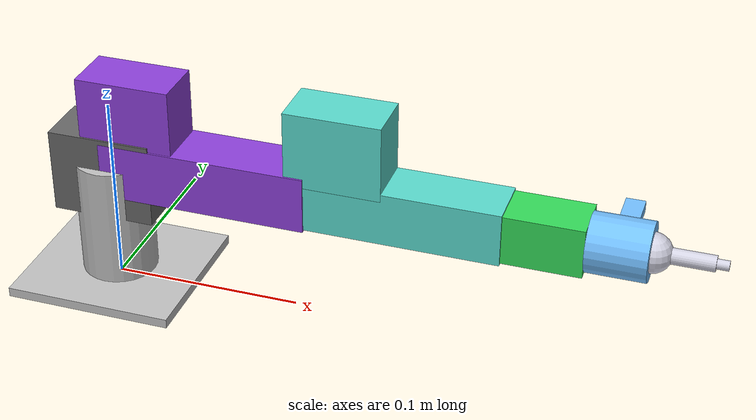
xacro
<?xml version="1.0"?>
<robot xmlns:xacro="http://www.ros.org/wiki/xacro" name="gem_cutter_arm">
    <xacro:arg name="initial_positions_file" default="initial_positions.yaml" />

    <!-- Import gem_cutter_arm urdf file -->
    <xacro:include filename="$(find gem_cutter_description)/urdf/gem_cutter_arm.urdf.xacro" />

    <!-- Import control_xacro -->
    <xacro:include filename="gem_cutter_arm.ros2_control.xacro" />

    <xacro:gem_cutter_arm_ros2_control name="FakeSystem" initial_positions_file="$(arg initial_positions_file)"/>

</robot>

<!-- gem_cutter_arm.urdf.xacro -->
<robot name="gem_cutter_arm" xmlns:xacro="http://www.ros.org/wiki/xacro">
    <!-- Optional prefix support (useful if you spawn multiple arms) -->
    <xacro:arg name="prefix" default=""/>
    <!-- Materials -->
    <xacro:include filename="$(find gem_cutter_description)/urdf/materials.xacro"/>
    <!-- Base plate: 9cm x 8.4cm -->
    <link name="$(arg prefix)base_link">
        <inertial>
            <origin xyz="0 0 0.0025" rpy="0 0 0"/>
            <mass value="0.35"/>
            <inertia ixx="0.0005" ixy="0" ixz="0" iyy="0.0005" iyz="0" izz="0.0008"/>
        </inertial>
        <visual>
            <origin xyz="0 0 0.0025" rpy="0 0 0"/>
            <geometry>
                <box size="0.09 0.084 0.005"/>
            </geometry>
            <material name="gray"/>
        </visual>
        <collision>
            <origin xyz="0 0 0.0025" rpy="0 0 0"/>
            <geometry>
                <box size="0.09 0.084 0.005"/>
            </geometry>
        </collision>
    </link>
    <!-- J1: base yaw -->
    <joint name="$(arg prefix)joint1_base_yaw" type="revolute">
        <parent link="$(arg prefix)base_link"/>
        <child link="$(arg prefix)link1_pedestal"/>
        <origin xyz="0 0 0.005" rpy="0 0 0"/>
        <axis xyz="0 0 1"/>
        <limit lower="-3.14159" upper="3.14159" effort="2.0" velocity="2.0"/>
        <dynamics damping="0.2" friction="0.1"/>
    </joint>
    <link name="$(arg prefix)link1_pedestal">
        <inertial>
            <origin xyz="0 0 0.0325" rpy="0 0 0"/>
            <mass value="0.25"/>
            <inertia ixx="0.00025" ixy="0" ixz="0" iyy="0.00025" iyz="0" izz="0.00020"/>
        </inertial>
        <visual>
            <origin xyz="0 0 0.0325" rpy="0 0 0"/>
            <geometry>
                <cylinder radius="0.02" length="0.065"/>
            </geometry>
            <material name="gray"/>
        </visual>
        <collision>
            <origin xyz="0 0 0.0325" rpy="0 0 0"/>
            <geometry>
                <cylinder radius="0.02" length="0.065"/>
            </geometry>
        </collision>
        <!-- Shoulder servo block -->
        <visual>
            <origin xyz="0 0 0.060" rpy="0 0 0"/>
            <geometry>
                <box size="0.055 0.030 0.045"/>
            </geometry>
            <material name="base_black"/>
        </visual>
        <collision>
            <origin xyz="0 0 0.060" rpy="0 0 0"/>
            <geometry>
                <box size="0.055 0.030 0.045"/>
            </geometry>
        </collision>
    </link>
    <!-- J2: shoulder pitch -->
    <joint name="$(arg prefix)joint2_shoulder_pitch" type="revolute">
        <parent link="$(arg prefix)link1_pedestal"/>
        <child link="$(arg prefix)link2_upper_arm"/>
        <origin xyz="0 0 0.065" rpy="0 0 0"/>
        <axis xyz="0 1 0"/>
        <limit lower="-1.25" upper="1.35" effort="2.0" velocity="2.0"/>
        <dynamics damping="0.25" friction="0.10"/>
    </joint>
    <link name="$(arg prefix)link2_upper_arm">
        <inertial>
            <origin xyz="0.055 0 0" rpy="0 0 0"/>
            <mass value="0.22"/>
            <inertia ixx="0.00018" ixy="0" ixz="0" iyy="0.00045" iyz="0" izz="0.00045"/>
        </inertial>
        <visual>
            <origin xyz="0.055 0 0" rpy="0 0 0"/>
            <geometry>
                <box size="0.11 0.030 0.030"/>
            </geometry>
            <material name="purple"/>
        </visual>
        <collision>
            <origin xyz="0.055 0 0" rpy="0 0 0"/>
            <geometry>
                <box size="0.11 0.030 0.030"/>
            </geometry>
        </collision>
        <visual>
            <origin xyz="0.015 0 0.030" rpy="0 0 0"/>
            <geometry>
                <box size="0.050 0.028 0.040"/>
            </geometry>
            <material name="purple"/>
        </visual>
        <collision>
            <origin xyz="0.015 0 0.030" rpy="0 0 0"/>
            <geometry>
                <box size="0.050 0.028 0.040"/>
            </geometry>
        </collision>
    </link>
    <!-- J3: elbow pitch -->
    <joint name="$(arg prefix)joint3_elbow_pitch" type="revolute">
        <parent link="$(arg prefix)link2_upper_arm"/>
        <child link="$(arg prefix)link3_forearm"/>
        <origin xyz="0.11 0 0" rpy="0 0 0"/>
        <axis xyz="0 1 0"/>
        <limit lower="-2.10" upper="2.10" effort="2.0" velocity="2.0"/>
        <dynamics damping="0.20" friction="0.08"/>
    </joint>
    <link name="$(arg prefix)link3_forearm">
        <inertial>
            <origin xyz="0.05 0 0" rpy="0 0 0"/>
            <mass value="0.18"/>
            <inertia ixx="0.00012" ixy="0" ixz="0" iyy="0.00028" iyz="0" izz="0.00028"/>
        </inertial>
        <visual>
            <origin xyz="0.05 0 0" rpy="0 0 0"/>
            <geometry>
                <box size="0.10 0.028 0.028"/>
            </geometry>
            <material name="light_blueish_green"/>
        </visual>
        <collision>
            <origin xyz="0.05 0 0" rpy="0 0 0"/>
            <geometry>
                <box size="0.10 0.028 0.028"/>
            </geometry>
        </collision>
        <visual>
            <origin xyz="0.015 0 0.030" rpy="0 0 0"/>
            <geometry>
                <box size="0.050 0.028 0.040"/>
            </geometry>
            <material name="light_blueish_green"/>
        </visual>
        <collision>
            <origin xyz="0.015 0 0.030" rpy="0 0 0"/>
            <geometry>
                <box size="0.050 0.028 0.040"/>
            </geometry>
        </collision>
    </link>
    <!-- J4: wrist pitch -->
    <joint name="$(arg prefix)joint4_wrist_pitch" type="revolute">
        <parent link="$(arg prefix)link3_forearm"/>
        <child link="$(arg prefix)link4_wrist_pitch_link"/>
        <origin xyz="0.10 0 0" rpy="0 0 0"/>
        <axis xyz="0 1 0"/>
        <limit lower="-1.70" upper="1.70" effort="1.5" velocity="2.5"/>
        <dynamics damping="0.15" friction="0.06"/>
    </joint>
    <link name="$(arg prefix)link4_wrist_pitch_link">
        <inertial>
            <origin xyz="0.02 0 0" rpy="0 0 0"/>
            <mass value="0.10"/>
            <inertia ixx="0.00004" ixy="0" ixz="0" iyy="0.00006" iyz="0" izz="0.00006"/>
        </inertial>
        <visual>
            <origin xyz="0.02 0 0" rpy="0 0 0"/>
            <geometry>
                <box size="0.04 0.026 0.026"/>
            </geometry>
            <material name="green"/>
        </visual>
        <collision>
            <origin xyz="0.02 0 0" rpy="0 0 0"/>
            <geometry>
                <box size="0.04 0.026 0.026"/>
            </geometry>
        </collision>
    </link>
    <!-- J5: wrist roll -->
    <joint name="$(arg prefix)joint5_wrist_roll" type="revolute">
        <parent link="$(arg prefix)link4_wrist_pitch_link"/>
        <child link="$(arg prefix)link5_roll_body"/>
        <origin xyz="0.04 0 0" rpy="0 0 0"/>
        <axis xyz="1 0 0"/>
        <limit lower="-3.14159" upper="3.14159" effort="1.0" velocity="4.0"/>
        <dynamics damping="0.10" friction="0.05"/>
    </joint>
    <link name="$(arg prefix)link5_roll_body">
        <inertial>
            <origin xyz="0.015 0 0" rpy="0 0 0"/>
            <mass value="0.09"/>
            <inertia ixx="0.00002" ixy="0" ixz="0" iyy="0.00002" iyz="0" izz="0.000015"/>
        </inertial>
        <visual>
            <origin xyz="0.015 0 0" rpy="0 1.5708 0"/>
            <geometry>
                <cylinder radius="0.015" length="0.03"/>
            </geometry>
            <material name="light_blue"/>
        </visual>
        <collision>
            <origin xyz="0.015 0 0" rpy="0 1.5708 0"/>
            <geometry>
                <cylinder radius="0.015" length="0.03"/>
            </geometry>
        </collision>
        <!-- Offset fin -->
        <visual>
            <origin xyz="0.015 0.020 0" rpy="0 0 0"/>
            <geometry>
                <box size="0.010 0.040 0.006"/>
            </geometry>
            <material name="light_blue"/>
        </visual>
        <collision>
            <origin xyz="0.015 0.020 0" rpy="0 0 0"/>
            <geometry>
                <box size="0.010 0.040 0.006"/>
            </geometry>
        </collision>
    </link>
    <!-- J6: tool yaw -->
    <joint name="$(arg prefix)joint6_tool_yaw" type="revolute">
        <parent link="$(arg prefix)link5_roll_body"/>
        <child link="$(arg prefix)tool_mount"/>
        <origin xyz="0.03 0 0" rpy="0 0 0"/>
        <axis xyz="0 0 1"/>
        <limit lower="-3.14159" upper="3.14159" effort="0.8" velocity="4.0"/>
        <dynamics damping="0.10" friction="0.05"/>
    </joint>
    <link name="$(arg prefix)tool_mount">
        <inertial>
            <origin xyz="0 0 0" rpy="0 0 0"/>
            <mass value="0.03"/>
            <inertia ixx="0.000005" ixy="0" ixz="0" iyy="0.000005" iyz="0" izz="0.000005"/>
        </inertial>
        <visual>
            <origin xyz="0 0 0" rpy="0 0 0"/>
            <geometry>
                <sphere radius="0.01"/>
            </geometry>
            <material name="tool_silver"/>
        </visual>
        <collision>
            <origin xyz="0 0 0" rpy="0 0 0"/>
            <geometry>
                <sphere radius="0.01"/>
            </geometry>
        </collision>
    </link>
    <!-- Fixed tool -->
    <joint name="$(arg prefix)ee_fixed" type="fixed">
        <parent link="$(arg prefix)tool_mount"/>
        <child link="$(arg prefix)ee_tool"/>
        <origin xyz="0 0 0" rpy="0 0 0"/>
    </joint>
    <link name="$(arg prefix)ee_tool">
        <inertial>
            <origin xyz="0.0165 0 0" rpy="0 0 0"/>
            <mass value="0.05"/>
            <inertia ixx="0.00001" ixy="0" ixz="0" iyy="0.00002" iyz="0" izz="0.00002"/>
        </inertial>
        <visual>
            <origin xyz="0.015 0 0" rpy="0 1.5708 0"/>
            <geometry>
                <cylinder radius="0.004" length="0.03"/>
            </geometry>
            <material name="tool_silver"/>
        </visual>
        <collision>
            <origin xyz="0.015 0 0" rpy="0 1.5708 0"/>
            <geometry>
                <cylinder radius="0.004" length="0.03"/>
            </geometry>
        </collision>
        <visual>
            <origin xyz="0.033 0 0" rpy="0 1.5708 0"/>
            <geometry>
                <cylinder radius="0.0025" length="0.006"/>
            </geometry>
            <material name="tool_silver"/>
        </visual>
        <collision>
            <origin xyz="0.033 0 0" rpy="0 1.5708 0"/>
            <geometry>
                <cylinder radius="0.0025" length="0.006"/>
            </geometry>
        </collision>
    </link>
</robot>

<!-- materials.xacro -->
<robot xmlns:xacro="http://www.ros.org/wiki/xacro">

  <!-- Simple, high-contrast RViz materials -->
  <material name="base_black">
    <color rgba="0.40 0.40 0.40 1.0"/>
  </material>

  <material name="gray">
    <color rgba="0.75 0.75 0.75 1.0"/>
  </material>

  <material name="purple">
    <color rgba="0.55 0.25 0.85 1.0"/>
  </material>

  <material name="light_blueish_green">
    <color rgba="0.35 0.85 0.80 1.0"/>
  </material>

  <material name="green">
    <color rgba="0.20 0.85 0.35 1.0"/>
  </material>

  <material name="light_blue">
    <color rgba="0.45 0.75 1.00 1.0"/>
  </material>

  <material name="tool_silver">
    <color rgba="0.82 0.82 0.88 1.0"/>
  </material>

  <material name="marker_red">
    <color rgba="1.00 0.10 0.10 1.0"/>
  </material>

</robot>
